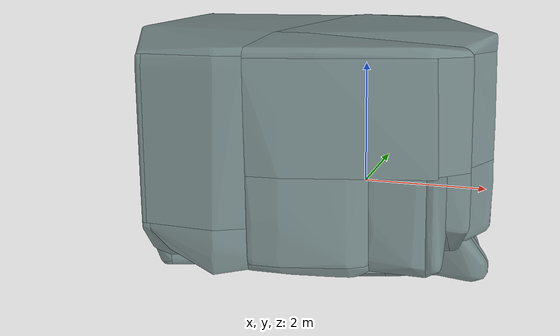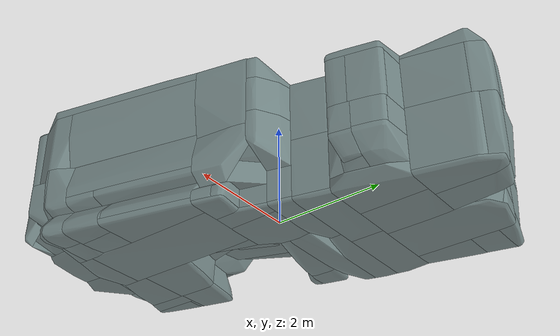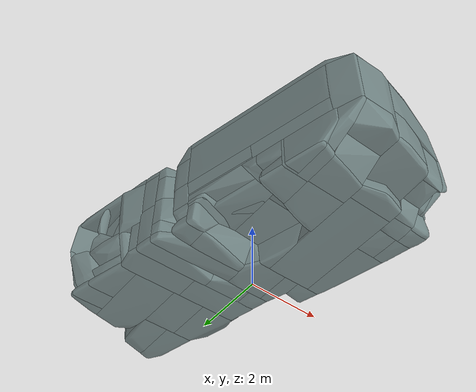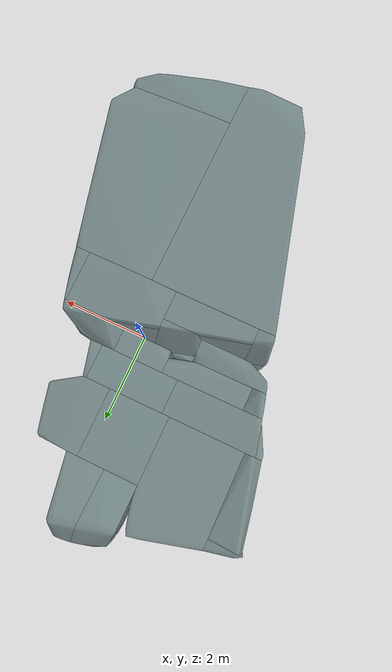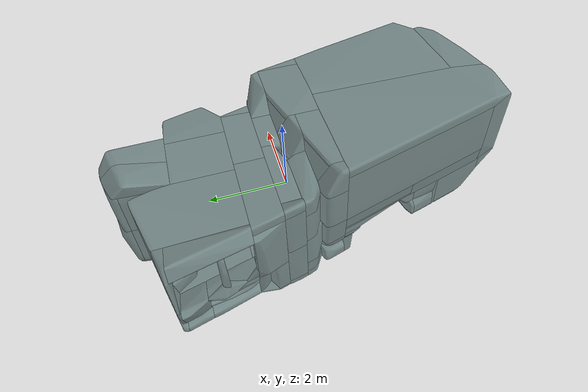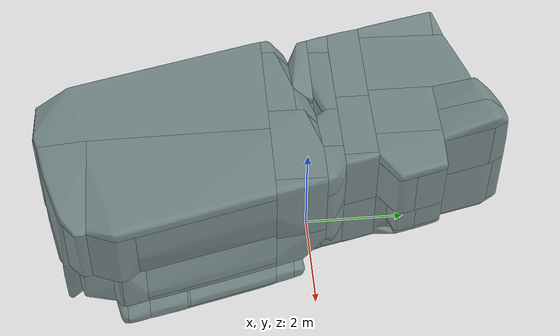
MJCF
<mujoco model="temp_preview_env">
  <option gravity="0 0 -9.81" />
  <compiler meshdir="../meshes" texturedir="../meshes/" />

  <asset>
    <mesh name="mesh_sim_part_0" file="part_0.obj" />
    <mesh name="mesh_sim_part_1" file="part_1.obj" />
    <mesh name="mesh_sim_part_2" file="part_2.obj" />
    <mesh name="mesh_sim_part_3" file="part_3.obj" />
    <mesh name="mesh_sim_part_4" file="part_4.obj" />
    <mesh name="mesh_sim_part_5" file="part_5.obj" />
    <mesh name="mesh_sim_part_6" file="part_6.obj" />
    <mesh name="mesh_sim_part_7" file="part_7.obj" />
    <mesh name="mesh_sim_part_8" file="part_8.obj" />
    <mesh name="mesh_sim_part_9" file="part_9.obj" />
    <mesh name="mesh_sim_part_10" file="part_10.obj" />
    <mesh name="mesh_sim_part_11" file="part_11.obj" />
    <mesh name="mesh_sim_part_12" file="part_12.obj" />
    <mesh name="mesh_sim_part_13" file="part_13.obj" />
    <mesh name="mesh_sim_part_14" file="part_14.obj" />
    <mesh name="mesh_sim_part_15" file="part_15.obj" />
    <mesh name="mesh_sim_part_16" file="part_16.obj" />
    <mesh name="mesh_sim_part_17" file="part_17.obj" />
    <mesh name="mesh_sim_part_18" file="part_18.obj" />
    <mesh name="mesh_sim_part_19" file="part_19.obj" />
    <mesh name="mesh_sim_part_20" file="part_20.obj" />
    <mesh name="mesh_sim_part_21" file="part_21.obj" />
    <mesh name="mesh_sim_part_22" file="part_22.obj" />
    <mesh name="mesh_sim_part_23" file="part_23.obj" />
    <mesh name="mesh_sim_part_24" file="part_24.obj" />
    <mesh name="mesh_sim_part_25" file="part_25.obj" />
    <mesh name="mesh_sim_part_26" file="part_26.obj" />
    <mesh name="mesh_sim_part_27" file="part_27.obj" />
    <mesh name="mesh_sim_part_28" file="part_28.obj" />
    <mesh name="mesh_sim_part_29" file="part_29.obj" />
    <mesh name="mesh_sim_part_30" file="part_30.obj" />
    <mesh name="mesh_sim_part_31" file="part_31.obj" />
    <mesh name="mesh_sim_part_32" file="part_32.obj" />
    <mesh name="mesh_sim_part_33" file="part_33.obj" />
    <mesh name="mesh_sim_part_34" file="part_34.obj" />
    <mesh name="mesh_sim_part_35" file="part_35.obj" />
    <mesh name="mesh_sim_part_36" file="part_36.obj" />
    <mesh name="mesh_sim_part_37" file="part_37.obj" />
    <mesh name="mesh_sim_part_38" file="part_38.obj" />
    <mesh name="mesh_sim_part_39" file="part_39.obj" />
    <mesh name="mesh_sim_part_40" file="part_40.obj" />
    <mesh name="mesh_sim_part_41" file="part_41.obj" />
    <mesh name="mesh_sim_part_42" file="part_42.obj" />
    <mesh name="mesh_sim_part_43" file="part_43.obj" />
    <mesh name="mesh_sim_part_44" file="part_44.obj" />
    <mesh name="mesh_sim_part_45" file="part_45.obj" />
    <mesh name="mesh_sim_part_46" file="part_46.obj" />
    <mesh name="mesh_sim_part_47" file="part_47.obj" />
    <mesh name="mesh_sim_part_48" file="part_48.obj" />
    <mesh name="mesh_sim_part_49" file="part_49.obj" />
    <mesh name="mesh_sim_part_50" file="part_50.obj" />
    <mesh name="mesh_sim_part_51" file="part_51.obj" />
    <mesh name="mesh_sim_part_52" file="part_52.obj" />
    <mesh name="mesh_sim_part_53" file="part_53.obj" />
    <mesh name="mesh_sim_part_54" file="part_54.obj" />
    <mesh name="mesh_sim_part_55" file="part_55.obj" />
    <mesh name="mesh_sim_part_56" file="part_56.obj" />
    <mesh name="mesh_sim_part_57" file="part_57.obj" />
    <mesh name="mesh_sim_part_58" file="part_58.obj" />
    <mesh name="mesh_sim_part_59" file="part_59.obj" />
    <mesh name="mesh_sim_part_60" file="part_60.obj" />
    <mesh name="mesh_sim_part_61" file="part_61.obj" />
    <mesh name="mesh_sim_part_62" file="part_62.obj" />
    <mesh name="mesh_sim_part_63" file="part_63.obj" />
    <mesh name="mesh_sim_part_64" file="part_64.obj" />
    <mesh name="mesh_sim_part_65" file="part_65.obj" />
    <mesh name="mesh_sim_part_66" file="part_66.obj" />
    <mesh name="mesh_sim_part_67" file="part_67.obj" />
    <mesh name="mesh_sim_part_68" file="part_68.obj" />
    <mesh name="mesh_sim_part_69" file="part_69.obj" />
    <mesh name="mesh_sim_part_70" file="part_70.obj" />
    <mesh name="mesh_sim_part_71" file="part_71.obj" />
    <mesh name="mesh_sim_part_72" file="part_72.obj" />
    <mesh name="mesh_sim_part_73" file="part_73.obj" />
    <mesh name="mesh_sim_part_74" file="part_74.obj" />
    <mesh name="mesh_sim_part_75" file="part_75.obj" />
    <mesh name="mesh_sim_part_76" file="part_76.obj" />
    <mesh name="mesh_sim_part_77" file="part_77.obj" />
    <mesh name="mesh_sim_part_78" file="part_78.obj" />
    <mesh name="mesh_sim_part_79" file="part_79.obj" />
    <mesh name="mesh_sim_part_80" file="part_80.obj" />
    <mesh name="mesh_sim_part_81" file="part_81.obj" />
    <mesh name="mesh_sim_part_82" file="part_82.obj" />
    <mesh name="mesh_sim_part_83" file="part_83.obj" />
    <mesh name="mesh_sim_part_84" file="part_84.obj" />
    <mesh name="mesh_sim_part_85" file="part_85.obj" />
    <mesh name="mesh_sim_part_86" file="part_86.obj" />
    <mesh name="mesh_sim_part_87" file="part_87.obj" />
    <mesh name="mesh_sim_part_88" file="part_88.obj" />
    <mesh name="mesh_sim_part_89" file="part_89.obj" />
    <mesh name="mesh_sim_part_90" file="part_90.obj" />
    <mesh name="mesh_sim_part_91" file="part_91.obj" />
    <mesh name="mesh_sim_part_92" file="part_92.obj" />
    <mesh name="mesh_sim_part_93" file="part_93.obj" />
    <mesh name="mesh_sim_part_94" file="part_94.obj" />
    <mesh name="mesh_sim_part_95" file="part_95.obj" />
    <mesh name="mesh_sim_part_96" file="part_96.obj" />
    <mesh name="mesh_sim_part_97" file="part_97.obj" />
    <mesh name="mesh_sim_part_98" file="part_98.obj" />
    <mesh name="mesh_sim_part_99" file="part_99.obj" />
    <mesh name="mesh_sim_part_100" file="part_100.obj" />
    <mesh name="mesh_sim_part_101" file="part_101.obj" />
    <mesh name="mesh_sim_part_102" file="part_102.obj" />
    <mesh name="mesh_sim_part_103" file="part_103.obj" />
    <mesh name="mesh_sim_part_104" file="part_104.obj" />
    <mesh name="mesh_sim_part_105" file="part_105.obj" />
    <mesh name="mesh_sim_part_106" file="part_106.obj" />
    <mesh name="mesh_sim_part_107" file="part_107.obj" />
    <mesh name="mesh_sim_part_108" file="part_108.obj" />
    <mesh name="mesh_sim_part_109" file="part_109.obj" />
    <mesh name="mesh_sim_part_110" file="part_110.obj" />
    <mesh name="mesh_sim_part_111" file="part_111.obj" />
    <mesh name="mesh_sim_part_112" file="part_112.obj" />
    <mesh name="mesh_sim_part_113" file="part_113.obj" />
    <mesh name="mesh_sim_part_114" file="part_114.obj" />
    <mesh name="mesh_sim_part_115" file="part_115.obj" />
    <mesh name="mesh_sim_part_116" file="part_116.obj" />
    <mesh name="mesh_sim_part_117" file="part_117.obj" />
    <mesh name="mesh_sim_part_118" file="part_118.obj" />
    <mesh name="mesh_sim_part_119" file="part_119.obj" />
    <mesh name="mesh_sim_part_120" file="part_120.obj" />
    <mesh name="mesh_sim_part_121" file="part_121.obj" />
    <mesh name="mesh_sim_part_122" file="part_122.obj" />
    <mesh name="mesh_sim_part_123" file="part_123.obj" />
    <mesh name="mesh_sim_part_124" file="part_124.obj" />
    <mesh name="mesh_sim_part_125" file="part_125.obj" />
    <mesh name="mesh_sim_part_126" file="part_126.obj" />
    <mesh name="mesh_sim_part_127" file="part_127.obj" />
    <mesh name="mesh_sim_part_128" file="part_128.obj" />
    <mesh name="mesh_sim_part_129" file="part_129.obj" />
    <mesh name="mesh_sim_part_130" file="part_130.obj" />
    <mesh name="mesh_sim_part_131" file="part_131.obj" />
    <mesh name="mesh_sim_part_132" file="part_132.obj" />
    <mesh name="mesh_sim_part_133" file="part_133.obj" />
    <mesh name="mesh_sim_part_134" file="part_134.obj" />
    <mesh name="mesh_sim_part_135" file="part_135.obj" />
    <mesh name="mesh_sim_part_136" file="part_136.obj" />
    <mesh name="mesh_sim_part_137" file="part_137.obj" />
    <mesh name="mesh_sim_part_138" file="part_138.obj" />
    <mesh name="mesh_sim_part_139" file="part_139.obj" />
    <mesh name="mesh_sim_part_140" file="part_140.obj" />
    <mesh name="mesh_sim_part_141" file="part_141.obj" />
    <mesh name="mesh_sim_part_142" file="part_142.obj" />
    <mesh name="mesh_sim_part_143" file="part_143.obj" />
    <mesh name="mesh_sim_part_144" file="part_144.obj" />
    <mesh name="mesh_sim_part_145" file="part_145.obj" />
    <mesh name="mesh_sim_part_146" file="part_146.obj" />
    <mesh name="mesh_sim_part_147" file="part_147.obj" />
    <mesh name="mesh_sim_part_148" file="part_148.obj" />
    <mesh name="mesh_sim_part_149" file="part_149.obj" />
    <mesh name="mesh_sim_part_150" file="part_150.obj" />
    <mesh name="mesh_sim_part_151" file="part_151.obj" />
    <mesh name="mesh_sim_part_152" file="part_152.obj" />
    <mesh name="mesh_sim_part_153" file="part_153.obj" />
    <mesh name="mesh_sim_part_154" file="part_154.obj" />
    <mesh name="mesh_sim_part_155" file="part_155.obj" />
    <mesh name="mesh_sim_part_156" file="part_156.obj" />
    <mesh name="mesh_sim_part_157" file="part_157.obj" />
    <mesh name="mesh_sim_part_158" file="part_158.obj" />
    <mesh name="mesh_sim_part_159" file="part_159.obj" />
    <mesh name="mesh_sim_part_160" file="part_160.obj" />
    <mesh name="mesh_sim_part_161" file="part_161.obj" />
    <mesh name="mesh_sim_part_162" file="part_162.obj" />
    <mesh name="mesh_sim_part_163" file="part_163.obj" />
    <mesh name="mesh_sim_part_164" file="part_164.obj" />
    <mesh name="mesh_sim_part_165" file="part_165.obj" />
    <mesh name="mesh_sim_part_166" file="part_166.obj" />
    <mesh name="mesh_sim_part_167" file="part_167.obj" />
    <mesh name="mesh_sim_part_168" file="part_168.obj" />
    <mesh name="mesh_sim_part_169" file="part_169.obj" />
    <mesh name="mesh_sim_part_170" file="part_170.obj" />
    <mesh name="mesh_sim_part_171" file="part_171.obj" />
    <mesh name="mesh_sim_part_172" file="part_172.obj" />
    <mesh name="mesh_sim_part_173" file="part_173.obj" />
    <mesh name="mesh_sim_part_174" file="part_174.obj" />
    <mesh name="mesh_sim_part_175" file="part_175.obj" />
    <mesh name="mesh_sim_part_176" file="part_176.obj" />
    <mesh name="mesh_sim_part_177" file="part_177.obj" />
  </asset>

  <worldbody>
    <light pos="0 0 3" dir="0 0 -1" />
    <body name="mesh_sim" pos="0 0 1.4">
      <geom type="mesh" rgba="0.35 0.45 0.45 0.75" mesh="mesh_sim_part_0" />
      <geom type="mesh" rgba="0.35 0.45 0.45 0.75" mesh="mesh_sim_part_1" />
      <geom type="mesh" rgba="0.35 0.45 0.45 0.75" mesh="mesh_sim_part_2" />
      <geom type="mesh" rgba="0.35 0.45 0.45 0.75" mesh="mesh_sim_part_3" />
      <geom type="mesh" rgba="0.35 0.45 0.45 0.75" mesh="mesh_sim_part_4" />
      <geom type="mesh" rgba="0.35 0.45 0.45 0.75" mesh="mesh_sim_part_5" />
      <geom type="mesh" rgba="0.35 0.45 0.45 0.75" mesh="mesh_sim_part_6" />
      <geom type="mesh" rgba="0.35 0.45 0.45 0.75" mesh="mesh_sim_part_7" />
      <geom type="mesh" rgba="0.35 0.45 0.45 0.75" mesh="mesh_sim_part_8" />
      <geom type="mesh" rgba="0.35 0.45 0.45 0.75" mesh="mesh_sim_part_9" />
      <geom type="mesh" rgba="0.35 0.45 0.45 0.75" mesh="mesh_sim_part_10" />
      <geom type="mesh" rgba="0.35 0.45 0.45 0.75" mesh="mesh_sim_part_11" />
      <geom type="mesh" rgba="0.35 0.45 0.45 0.75" mesh="mesh_sim_part_12" />
      <geom type="mesh" rgba="0.35 0.45 0.45 0.75" mesh="mesh_sim_part_13" />
      <geom type="mesh" rgba="0.35 0.45 0.45 0.75" mesh="mesh_sim_part_14" />
      <geom type="mesh" rgba="0.35 0.45 0.45 0.75" mesh="mesh_sim_part_15" />
      <geom type="mesh" rgba="0.35 0.45 0.45 0.75" mesh="mesh_sim_part_16" />
      <geom type="mesh" rgba="0.35 0.45 0.45 0.75" mesh="mesh_sim_part_17" />
      <geom type="mesh" rgba="0.35 0.45 0.45 0.75" mesh="mesh_sim_part_18" />
      <geom type="mesh" rgba="0.35 0.45 0.45 0.75" mesh="mesh_sim_part_19" />
      <geom type="mesh" rgba="0.35 0.45 0.45 0.75" mesh="mesh_sim_part_20" />
      <geom type="mesh" rgba="0.35 0.45 0.45 0.75" mesh="mesh_sim_part_21" />
      <geom type="mesh" rgba="0.35 0.45 0.45 0.75" mesh="mesh_sim_part_22" />
      <geom type="mesh" rgba="0.35 0.45 0.45 0.75" mesh="mesh_sim_part_23" />
      <geom type="mesh" rgba="0.35 0.45 0.45 0.75" mesh="mesh_sim_part_24" />
      <geom type="mesh" rgba="0.35 0.45 0.45 0.75" mesh="mesh_sim_part_25" />
      <geom type="mesh" rgba="0.35 0.45 0.45 0.75" mesh="mesh_sim_part_26" />
      <geom type="mesh" rgba="0.35 0.45 0.45 0.75" mesh="mesh_sim_part_27" />
      <geom type="mesh" rgba="0.35 0.45 0.45 0.75" mesh="mesh_sim_part_28" />
      <geom type="mesh" rgba="0.35 0.45 0.45 0.75" mesh="mesh_sim_part_29" />
      <geom type="mesh" rgba="0.35 0.45 0.45 0.75" mesh="mesh_sim_part_30" />
      <geom type="mesh" rgba="0.35 0.45 0.45 0.75" mesh="mesh_sim_part_31" />
      <geom type="mesh" rgba="0.35 0.45 0.45 0.75" mesh="mesh_sim_part_32" />
      <geom type="mesh" rgba="0.35 0.45 0.45 0.75" mesh="mesh_sim_part_33" />
      <geom type="mesh" rgba="0.35 0.45 0.45 0.75" mesh="mesh_sim_part_34" />
      <geom type="mesh" rgba="0.35 0.45 0.45 0.75" mesh="mesh_sim_part_35" />
      <geom type="mesh" rgba="0.35 0.45 0.45 0.75" mesh="mesh_sim_part_36" />
      <geom type="mesh" rgba="0.35 0.45 0.45 0.75" mesh="mesh_sim_part_37" />
      <geom type="mesh" rgba="0.35 0.45 0.45 0.75" mesh="mesh_sim_part_38" />
      <geom type="mesh" rgba="0.35 0.45 0.45 0.75" mesh="mesh_sim_part_39" />
      <geom type="mesh" rgba="0.35 0.45 0.45 0.75" mesh="mesh_sim_part_40" />
      <geom type="mesh" rgba="0.35 0.45 0.45 0.75" mesh="mesh_sim_part_41" />
      <geom type="mesh" rgba="0.35 0.45 0.45 0.75" mesh="mesh_sim_part_42" />
      <geom type="mesh" rgba="0.35 0.45 0.45 0.75" mesh="mesh_sim_part_43" />
      <geom type="mesh" rgba="0.35 0.45 0.45 0.75" mesh="mesh_sim_part_44" />
      <geom type="mesh" rgba="0.35 0.45 0.45 0.75" mesh="mesh_sim_part_45" />
      <geom type="mesh" rgba="0.35 0.45 0.45 0.75" mesh="mesh_sim_part_46" />
      <geom type="mesh" rgba="0.35 0.45 0.45 0.75" mesh="mesh_sim_part_47" />
      <geom type="mesh" rgba="0.35 0.45 0.45 0.75" mesh="mesh_sim_part_48" />
      <geom type="mesh" rgba="0.35 0.45 0.45 0.75" mesh="mesh_sim_part_49" />
      <geom type="mesh" rgba="0.35 0.45 0.45 0.75" mesh="mesh_sim_part_50" />
      <geom type="mesh" rgba="0.35 0.45 0.45 0.75" mesh="mesh_sim_part_51" />
      <geom type="mesh" rgba="0.35 0.45 0.45 0.75" mesh="mesh_sim_part_52" />
      <geom type="mesh" rgba="0.35 0.45 0.45 0.75" mesh="mesh_sim_part_53" />
      <geom type="mesh" rgba="0.35 0.45 0.45 0.75" mesh="mesh_sim_part_54" />
      <geom type="mesh" rgba="0.35 0.45 0.45 0.75" mesh="mesh_sim_part_55" />
      <geom type="mesh" rgba="0.35 0.45 0.45 0.75" mesh="mesh_sim_part_56" />
      <geom type="mesh" rgba="0.35 0.45 0.45 0.75" mesh="mesh_sim_part_57" />
      <geom type="mesh" rgba="0.35 0.45 0.45 0.75" mesh="mesh_sim_part_58" />
      <geom type="mesh" rgba="0.35 0.45 0.45 0.75" mesh="mesh_sim_part_59" />
      <geom type="mesh" rgba="0.35 0.45 0.45 0.75" mesh="mesh_sim_part_60" />
      <geom type="mesh" rgba="0.35 0.45 0.45 0.75" mesh="mesh_sim_part_61" />
      <geom type="mesh" rgba="0.35 0.45 0.45 0.75" mesh="mesh_sim_part_62" />
      <geom type="mesh" rgba="0.35 0.45 0.45 0.75" mesh="mesh_sim_part_63" />
      <geom type="mesh" rgba="0.35 0.45 0.45 0.75" mesh="mesh_sim_part_64" />
      <geom type="mesh" rgba="0.35 0.45 0.45 0.75" mesh="mesh_sim_part_65" />
      <geom type="mesh" rgba="0.35 0.45 0.45 0.75" mesh="mesh_sim_part_66" />
      <geom type="mesh" rgba="0.35 0.45 0.45 0.75" mesh="mesh_sim_part_67" />
      <geom type="mesh" rgba="0.35 0.45 0.45 0.75" mesh="mesh_sim_part_68" />
      <geom type="mesh" rgba="0.35 0.45 0.45 0.75" mesh="mesh_sim_part_69" />
      <geom type="mesh" rgba="0.35 0.45 0.45 0.75" mesh="mesh_sim_part_70" />
      <geom type="mesh" rgba="0.35 0.45 0.45 0.75" mesh="mesh_sim_part_71" />
      <geom type="mesh" rgba="0.35 0.45 0.45 0.75" mesh="mesh_sim_part_72" />
      <geom type="mesh" rgba="0.35 0.45 0.45 0.75" mesh="mesh_sim_part_73" />
      <geom type="mesh" rgba="0.35 0.45 0.45 0.75" mesh="mesh_sim_part_74" />
      <geom type="mesh" rgba="0.35 0.45 0.45 0.75" mesh="mesh_sim_part_75" />
      <geom type="mesh" rgba="0.35 0.45 0.45 0.75" mesh="mesh_sim_part_76" />
      <geom type="mesh" rgba="0.35 0.45 0.45 0.75" mesh="mesh_sim_part_77" />
      <geom type="mesh" rgba="0.35 0.45 0.45 0.75" mesh="mesh_sim_part_78" />
      <geom type="mesh" rgba="0.35 0.45 0.45 0.75" mesh="mesh_sim_part_79" />
      <geom type="mesh" rgba="0.35 0.45 0.45 0.75" mesh="mesh_sim_part_80" />
      <geom type="mesh" rgba="0.35 0.45 0.45 0.75" mesh="mesh_sim_part_81" />
      <geom type="mesh" rgba="0.35 0.45 0.45 0.75" mesh="mesh_sim_part_82" />
      <geom type="mesh" rgba="0.35 0.45 0.45 0.75" mesh="mesh_sim_part_83" />
      <geom type="mesh" rgba="0.35 0.45 0.45 0.75" mesh="mesh_sim_part_84" />
      <geom type="mesh" rgba="0.35 0.45 0.45 0.75" mesh="mesh_sim_part_85" />
      <geom type="mesh" rgba="0.35 0.45 0.45 0.75" mesh="mesh_sim_part_86" />
      <geom type="mesh" rgba="0.35 0.45 0.45 0.75" mesh="mesh_sim_part_87" />
      <geom type="mesh" rgba="0.35 0.45 0.45 0.75" mesh="mesh_sim_part_88" />
      <geom type="mesh" rgba="0.35 0.45 0.45 0.75" mesh="mesh_sim_part_89" />
      <geom type="mesh" rgba="0.35 0.45 0.45 0.75" mesh="mesh_sim_part_90" />
      <geom type="mesh" rgba="0.35 0.45 0.45 0.75" mesh="mesh_sim_part_91" />
      <geom type="mesh" rgba="0.35 0.45 0.45 0.75" mesh="mesh_sim_part_92" />
      <geom type="mesh" rgba="0.35 0.45 0.45 0.75" mesh="mesh_sim_part_93" />
      <geom type="mesh" rgba="0.35 0.45 0.45 0.75" mesh="mesh_sim_part_94" />
      <geom type="mesh" rgba="0.35 0.45 0.45 0.75" mesh="mesh_sim_part_95" />
      <geom type="mesh" rgba="0.35 0.45 0.45 0.75" mesh="mesh_sim_part_96" />
      <geom type="mesh" rgba="0.35 0.45 0.45 0.75" mesh="mesh_sim_part_97" />
      <geom type="mesh" rgba="0.35 0.45 0.45 0.75" mesh="mesh_sim_part_98" />
      <geom type="mesh" rgba="0.35 0.45 0.45 0.75" mesh="mesh_sim_part_99" />
      <geom type="mesh" rgba="0.35 0.45 0.45 0.75" mesh="mesh_sim_part_100" />
      <geom type="mesh" rgba="0.35 0.45 0.45 0.75" mesh="mesh_sim_part_101" />
      <geom type="mesh" rgba="0.35 0.45 0.45 0.75" mesh="mesh_sim_part_102" />
      <geom type="mesh" rgba="0.35 0.45 0.45 0.75" mesh="mesh_sim_part_103" />
      <geom type="mesh" rgba="0.35 0.45 0.45 0.75" mesh="mesh_sim_part_104" />
      <geom type="mesh" rgba="0.35 0.45 0.45 0.75" mesh="mesh_sim_part_105" />
      <geom type="mesh" rgba="0.35 0.45 0.45 0.75" mesh="mesh_sim_part_106" />
      <geom type="mesh" rgba="0.35 0.45 0.45 0.75" mesh="mesh_sim_part_107" />
      <geom type="mesh" rgba="0.35 0.45 0.45 0.75" mesh="mesh_sim_part_108" />
      <geom type="mesh" rgba="0.35 0.45 0.45 0.75" mesh="mesh_sim_part_109" />
      <geom type="mesh" rgba="0.35 0.45 0.45 0.75" mesh="mesh_sim_part_110" />
      <geom type="mesh" rgba="0.35 0.45 0.45 0.75" mesh="mesh_sim_part_111" />
      <geom type="mesh" rgba="0.35 0.45 0.45 0.75" mesh="mesh_sim_part_112" />
      <geom type="mesh" rgba="0.35 0.45 0.45 0.75" mesh="mesh_sim_part_113" />
      <geom type="mesh" rgba="0.35 0.45 0.45 0.75" mesh="mesh_sim_part_114" />
      <geom type="mesh" rgba="0.35 0.45 0.45 0.75" mesh="mesh_sim_part_115" />
      <geom type="mesh" rgba="0.35 0.45 0.45 0.75" mesh="mesh_sim_part_116" />
      <geom type="mesh" rgba="0.35 0.45 0.45 0.75" mesh="mesh_sim_part_117" />
      <geom type="mesh" rgba="0.35 0.45 0.45 0.75" mesh="mesh_sim_part_118" />
      <geom type="mesh" rgba="0.35 0.45 0.45 0.75" mesh="mesh_sim_part_119" />
      <geom type="mesh" rgba="0.35 0.45 0.45 0.75" mesh="mesh_sim_part_120" />
      <geom type="mesh" rgba="0.35 0.45 0.45 0.75" mesh="mesh_sim_part_121" />
      <geom type="mesh" rgba="0.35 0.45 0.45 0.75" mesh="mesh_sim_part_122" />
      <geom type="mesh" rgba="0.35 0.45 0.45 0.75" mesh="mesh_sim_part_123" />
      <geom type="mesh" rgba="0.35 0.45 0.45 0.75" mesh="mesh_sim_part_124" />
      <geom type="mesh" rgba="0.35 0.45 0.45 0.75" mesh="mesh_sim_part_125" />
      <geom type="mesh" rgba="0.35 0.45 0.45 0.75" mesh="mesh_sim_part_126" />
      <geom type="mesh" rgba="0.35 0.45 0.45 0.75" mesh="mesh_sim_part_127" />
      <geom type="mesh" rgba="0.35 0.45 0.45 0.75" mesh="mesh_sim_part_128" />
      <geom type="mesh" rgba="0.35 0.45 0.45 0.75" mesh="mesh_sim_part_129" />
      <geom type="mesh" rgba="0.35 0.45 0.45 0.75" mesh="mesh_sim_part_130" />
      <geom type="mesh" rgba="0.35 0.45 0.45 0.75" mesh="mesh_sim_part_131" />
      <geom type="mesh" rgba="0.35 0.45 0.45 0.75" mesh="mesh_sim_part_132" />
      <geom type="mesh" rgba="0.35 0.45 0.45 0.75" mesh="mesh_sim_part_133" />
      <geom type="mesh" rgba="0.35 0.45 0.45 0.75" mesh="mesh_sim_part_134" />
      <geom type="mesh" rgba="0.35 0.45 0.45 0.75" mesh="mesh_sim_part_135" />
      <geom type="mesh" rgba="0.35 0.45 0.45 0.75" mesh="mesh_sim_part_136" />
      <geom type="mesh" rgba="0.35 0.45 0.45 0.75" mesh="mesh_sim_part_137" />
      <geom type="mesh" rgba="0.35 0.45 0.45 0.75" mesh="mesh_sim_part_138" />
      <geom type="mesh" rgba="0.35 0.45 0.45 0.75" mesh="mesh_sim_part_139" />
      <geom type="mesh" rgba="0.35 0.45 0.45 0.75" mesh="mesh_sim_part_140" />
      <geom type="mesh" rgba="0.35 0.45 0.45 0.75" mesh="mesh_sim_part_141" />
      <geom type="mesh" rgba="0.35 0.45 0.45 0.75" mesh="mesh_sim_part_142" />
      <geom type="mesh" rgba="0.35 0.45 0.45 0.75" mesh="mesh_sim_part_143" />
      <geom type="mesh" rgba="0.35 0.45 0.45 0.75" mesh="mesh_sim_part_144" />
      <geom type="mesh" rgba="0.35 0.45 0.45 0.75" mesh="mesh_sim_part_145" />
      <geom type="mesh" rgba="0.35 0.45 0.45 0.75" mesh="mesh_sim_part_146" />
      <geom type="mesh" rgba="0.35 0.45 0.45 0.75" mesh="mesh_sim_part_147" />
      <geom type="mesh" rgba="0.35 0.45 0.45 0.75" mesh="mesh_sim_part_148" />
      <geom type="mesh" rgba="0.35 0.45 0.45 0.75" mesh="mesh_sim_part_149" />
      <geom type="mesh" rgba="0.35 0.45 0.45 0.75" mesh="mesh_sim_part_150" />
      <geom type="mesh" rgba="0.35 0.45 0.45 0.75" mesh="mesh_sim_part_151" />
      <geom type="mesh" rgba="0.35 0.45 0.45 0.75" mesh="mesh_sim_part_152" />
      <geom type="mesh" rgba="0.35 0.45 0.45 0.75" mesh="mesh_sim_part_153" />
      <geom type="mesh" rgba="0.35 0.45 0.45 0.75" mesh="mesh_sim_part_154" />
      <geom type="mesh" rgba="0.35 0.45 0.45 0.75" mesh="mesh_sim_part_155" />
      <geom type="mesh" rgba="0.35 0.45 0.45 0.75" mesh="mesh_sim_part_156" />
      <geom type="mesh" rgba="0.35 0.45 0.45 0.75" mesh="mesh_sim_part_157" />
      <geom type="mesh" rgba="0.35 0.45 0.45 0.75" mesh="mesh_sim_part_158" />
      <geom type="mesh" rgba="0.35 0.45 0.45 0.75" mesh="mesh_sim_part_159" />
      <geom type="mesh" rgba="0.35 0.45 0.45 0.75" mesh="mesh_sim_part_160" />
      <geom type="mesh" rgba="0.35 0.45 0.45 0.75" mesh="mesh_sim_part_161" />
      <geom type="mesh" rgba="0.35 0.45 0.45 0.75" mesh="mesh_sim_part_162" />
      <geom type="mesh" rgba="0.35 0.45 0.45 0.75" mesh="mesh_sim_part_163" />
      <geom type="mesh" rgba="0.35 0.45 0.45 0.75" mesh="mesh_sim_part_164" />
      <geom type="mesh" rgba="0.35 0.45 0.45 0.75" mesh="mesh_sim_part_165" />
      <geom type="mesh" rgba="0.35 0.45 0.45 0.75" mesh="mesh_sim_part_166" />
      <geom type="mesh" rgba="0.35 0.45 0.45 0.75" mesh="mesh_sim_part_167" />
      <geom type="mesh" rgba="0.35 0.45 0.45 0.75" mesh="mesh_sim_part_168" />
      <geom type="mesh" rgba="0.35 0.45 0.45 0.75" mesh="mesh_sim_part_169" />
      <geom type="mesh" rgba="0.35 0.45 0.45 0.75" mesh="mesh_sim_part_170" />
      <geom type="mesh" rgba="0.35 0.45 0.45 0.75" mesh="mesh_sim_part_171" />
      <geom type="mesh" rgba="0.35 0.45 0.45 0.75" mesh="mesh_sim_part_172" />
      <geom type="mesh" rgba="0.35 0.45 0.45 0.75" mesh="mesh_sim_part_173" />
      <geom type="mesh" rgba="0.35 0.45 0.45 0.75" mesh="mesh_sim_part_174" />
      <geom type="mesh" rgba="0.35 0.45 0.45 0.75" mesh="mesh_sim_part_175" />
      <geom type="mesh" rgba="0.35 0.45 0.45 0.75" mesh="mesh_sim_part_176" />
      <geom type="mesh" rgba="0.35 0.45 0.45 0.75" mesh="mesh_sim_part_177" />
    </body>
  </worldbody>
</mujoco>
